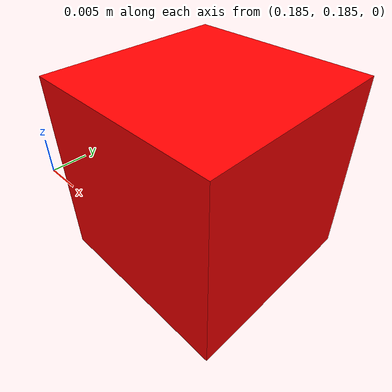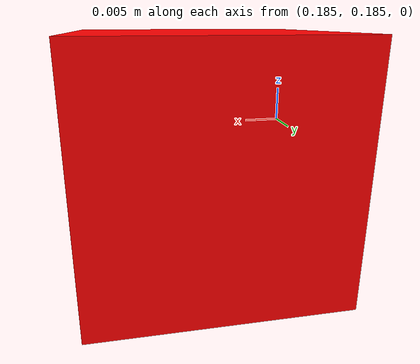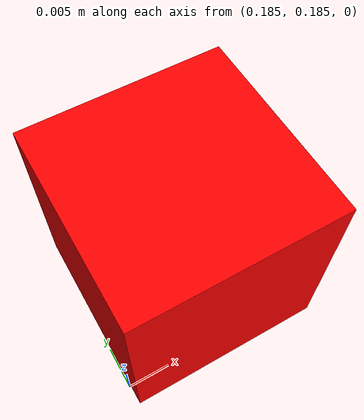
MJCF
<mujoco>
    <worldbody>

        <body name="box" pos="0.2 0.2 0.0">
            <joint name="red_box_joint" type="free" />
            <geom density="700" condim="4" solimp="2 1 0.01" solref="0.01 1" friction="2 0.005 0.0001" pos="0 0 0" size="0.014 0.014 0.014" type="box" name="box" rgba="1 0 0 1" />
        </body>

    </worldbody>

</mujoco>
